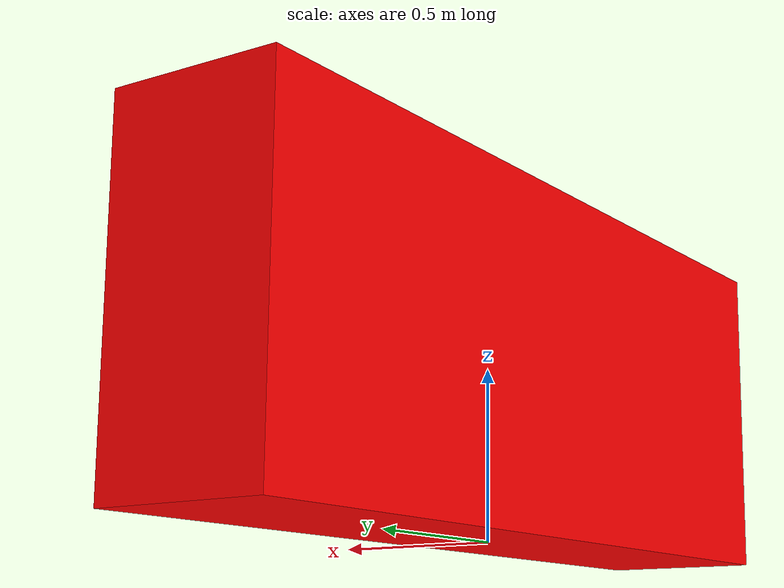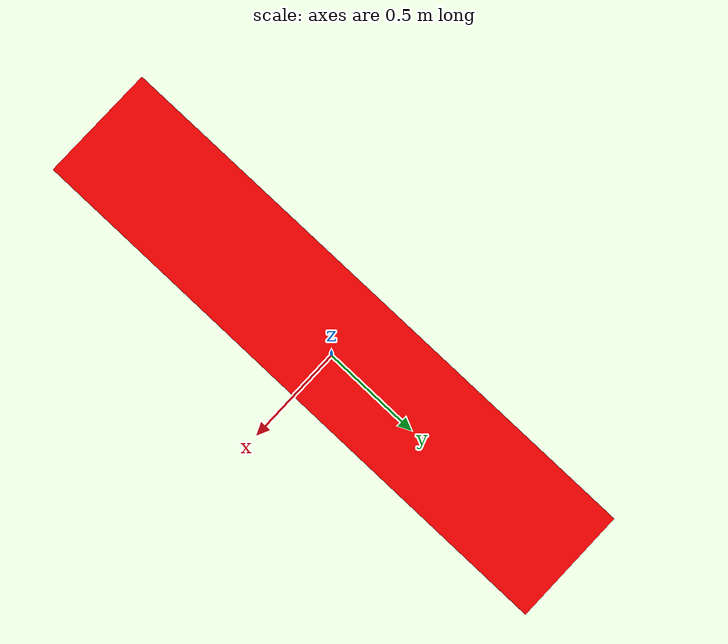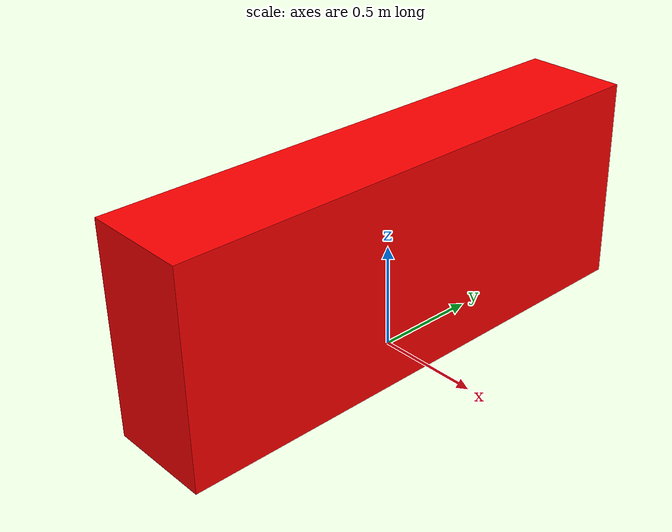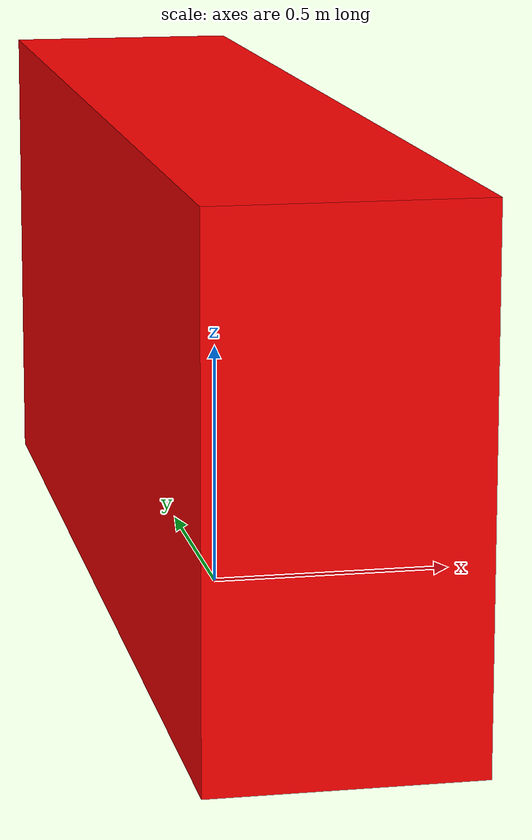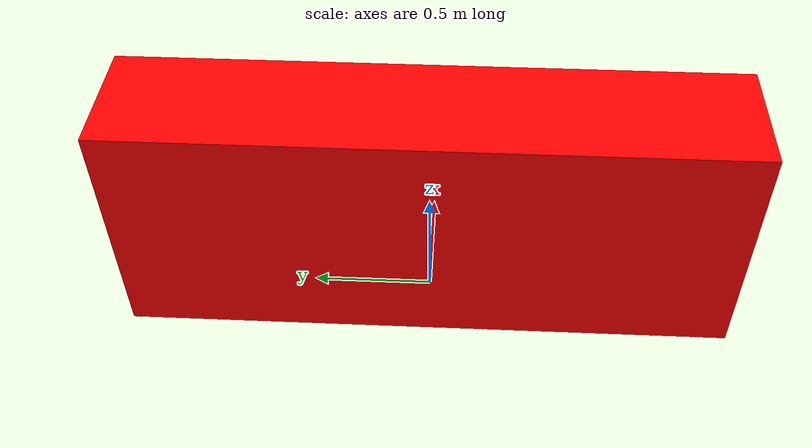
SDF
<?xml version="1.0"?>
<sdf version="1.8">
  <model name="dynamic_box">
    <static>true</static>

    <link name="link">
      <pose>0 0 0.5 0 0 0</pose>

      <collision name="collision">
        <geometry>
          <box>
            <size>0.5 2.5 1.0</size>
          </box>
        </geometry>
      </collision>

      <visual name="visual">
        <geometry>
          <box>
            <size>0.5 2.5 1.0</size>
          </box>
        </geometry>
        <material>
          <ambient>1 0 0 1</ambient>
          <diffuse>1 0 0 1</diffuse>
        </material>
      </visual>
    </link>
  </model>
</sdf>
